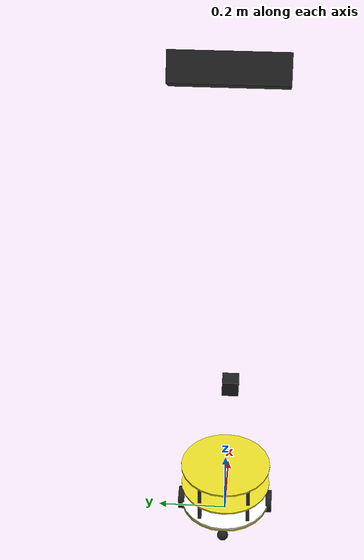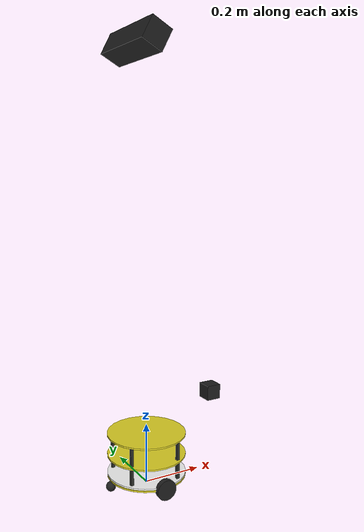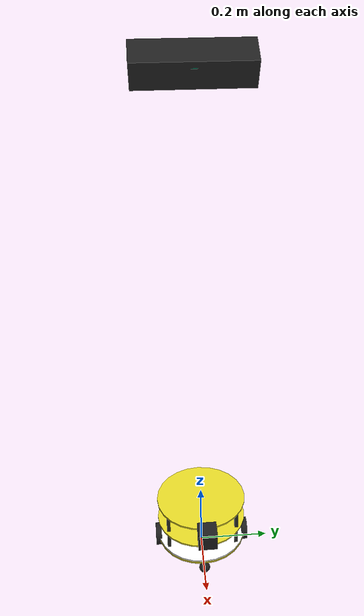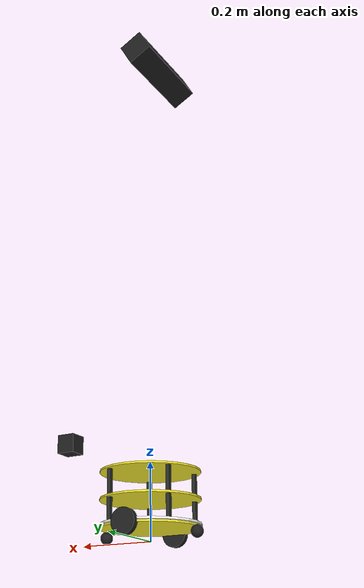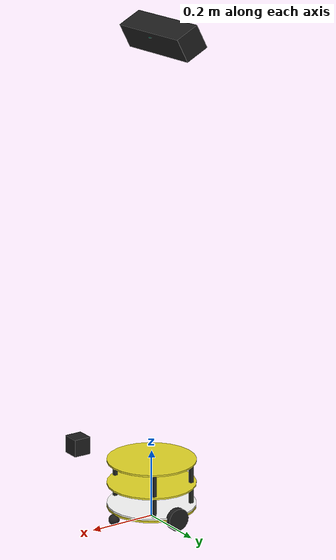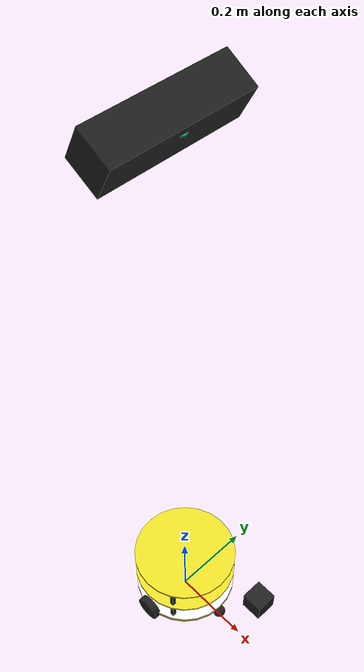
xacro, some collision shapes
<?xml version="1.0"?>
<robot name="mrobot" xmlns:xacro="http://www.ros.org/wiki/xacro">
<!-- robot_mrobot/mrobot_gazebo/urdf/dianzikeji -->

    <xacro:include filename="$(find ASLAM_gazebo_world)/urdf/test_robot.urdf.xacro" />

	<!-- 雷达hokuyo -->
    <xacro:include filename="$(find ASLAM_gazebo_world)/urdf/hokuyo.urdf.xacro" />
	<xacro:property name="laser_offset_x" value="0.25" />
	<xacro:property name="laser_offset_y" value="0" />
	<xacro:property name="laser_offset_z" value="0.1" />
	<xacro:laser_hokuyo parent="plate_2_link" laser_offset_x="${laser_offset_x}" laser_offset_y="${laser_offset_y}" laser_offset_z="${laser_offset_z}" />
	<!-- 相机kinectv1 -->
	<xacro:include filename="$(find ASLAM_gazebo_world)/urdf/kinectv1_neck.urdf.xacro" />
	<xacro:property name="camera_offset_x" value="0.0" />
	<xacro:property name="camera_offset_y" value="0.0" />
	<xacro:property name="camera_offset_z" value="1.4" />
	<xacro:kinectv1_neck parent="base_footprint" camera_offset_x="${camera_offset_x}" camera_offset_y="${camera_offset_y}" camera_offset_z="${camera_offset_z}" />

</robot>

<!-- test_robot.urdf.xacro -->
<robot name="mrobot" xmlns:xacro="http://www.ros.org/wiki/xacro">

	<xacro:include filename="$(find ASLAM_gazebo_world)/urdf/test_robot_body.urdf.xacro" />

	<!-- Body of mrobot, with plates, standoffs -->
	<mrobot_body/>

</robot>

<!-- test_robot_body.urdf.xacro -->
<robot name="mrobot" xmlns:xacro="http://www.ros.org/wiki/xacro">

    <!-- Defining the colors used in this robot -->

    <!-- PROPERTY LIST -->
    <!--All units in m-kg-s-radians unit system -->
    <xacro:property name="M_PI" value="3.1415926535897931" />
    <xacro:property name="shell_high_correct" value="0.04" />
    <xacro:property name="caster_high_correct" value="-0.0001" />
    <!-- Main body length, width, height and mass -->
    <xacro:property name="base_mass"        value="0.5" />
    <xacro:property name="base_link_radius" value="0.13"/>   <!-- origin: 0.13   fabo:0.2-->
    <xacro:property name="base_link_length" value="0.005"/>

    <xacro:property name="motor_x" value="0"/>

    <!-- Caster radius and mass -->
    <xacro:property name="caster_radius"          value="0.016" />
    <xacro:property name="caster_mass"            value="0.01" />
    <xacro:property name="caster_joint_origin_x"  value="-0.13" />    <!-- caster position to center.  fabo:0.2     -->

    <!-- Wheel radius, height and mass -->
    <xacro:property name="wheel_radius" value="0.033" />
    <xacro:property name="wheel_height" value="0.017" />
    <xacro:property name="wheel_mass"   value="0.1" />

    <!-- plate height and mass -->
    <xacro:property name="plate_mass"   value="0.05"/>
    <xacro:property name="plate_height" value="0.07"/>
    <xacro:property name="standoff_x"   value="0.12"/>
    <xacro:property name="standoff_y"   value="0.10"/>

    <!-- Macro for inertia matrix -->
    <xacro:macro name="sphere_inertial_matrix" params="m r">
        <inertial>
            <mass value="${m}" />
            <inertia ixx="${2*m*r*r/5}" ixy="0" ixz="0"
                iyy="${2*m*r*r/5}" iyz="0"
                izz="${2*m*r*r/5}" />
        </inertial>
    </xacro:macro>

    <xacro:macro name="cylinder_inertial_matrix" params="m r h">
        <inertial>
            <mass value="${m}" />
            <inertia ixx="${m*(3*r*r+h*h)/12}" ixy = "0" ixz = "0"
                iyy="${m*(3*r*r+h*h)/12}" iyz = "0"
                izz="${m*r*r/2}" />
        </inertial>
    </xacro:macro>

    <xacro:macro name="box_inertial_matrix" params="m w h d">
        <inertial>
            <mass value="${m}" />
            <inertia ixx="${m*(h*h+d*d)/12}" ixy = "0" ixz = "0"
                iyy="${m*(w*w+d*d)/12}" iyz = "0"
                izz="${m*(w*w+h*h)/12}" />
        </inertial>
    </xacro:macro>

    <!-- Macro for wheel joint -->
    <xacro:macro name="wheel" params="lr translateY">
        <!-- lr: left, right -->
        <link name="wheel_${lr}_link">
            <visual>
                <origin xyz="0 0 0" rpy="${M_PI/2} 0  0 " />
                <geometry>
                    <cylinder length="${wheel_height}" radius="${wheel_radius}" />
                </geometry>
                <material name="Black" />
            </visual>
            <collision>
                <origin xyz="0 0 0" rpy="${M_PI/2} 0 0 " />
                <geometry>
                    <cylinder length="${wheel_height}" radius="${wheel_radius}" />
                </geometry>
            </collision>
            <cylinder_inertial_matrix  m="${wheel_mass}" r="${wheel_radius}" h="${wheel_height}" />
        </link>

        <gazebo reference="wheel_${lr}_link">
            <material>Gazebo/Black</material>
        </gazebo>

        <joint name="base_to_wheel_${lr}_joint" type="continuous">
            <parent link="base_link"/>
            <child link="wheel_${lr}_link"/>
            <origin xyz="${motor_x} ${translateY * base_link_radius} 0" rpy="0 0 0" />
            <axis xyz="0 1 0" rpy="0  0" />

        </joint>

        <!-- Transmission is important to link the joints and the controller -->
        <transmission name="wheel_${lr}_joint_trans">
            <type>transmission_interface/SimpleTransmission</type>
            <joint name="base_to_wheel_${lr}_joint">
	    	<hardwareInterface>EffortJointInterface</hardwareInterface>
    	    </joint>
            <actuator name="wheel_${lr}_joint_motor">
                <hardwareInterface>VelocityJointInterface</hardwareInterface>

                <mechanicalReduction>1</mechanicalReduction>
            </actuator>
        </transmission>
    </xacro:macro>

    <!-- Macro for caster joint -->
    <xacro:macro name="caster" params="fb translateX">
        <!-- fb: front, back -->
        <link name="${fb}_caster_link">
            <visual>
                <origin xyz="0 0 0 " rpy="0 0 0" />
                <geometry>
                    <sphere radius="${caster_radius}" />
                </geometry>
                <material name="Black" />
            </visual>
            <collision>
                <geometry>
                    <sphere radius="${caster_radius}" />
                </geometry>
                <origin xyz="0 0 0 " rpy="0 0 0" />
            </collision>
            <sphere_inertial_matrix  m="${caster_mass}" r="${caster_radius}" />
        </link>

        <gazebo reference="${fb}_caster_link">
            <material>Gazebo/Black</material>
        </gazebo>

        <joint name="base_to_${fb}_caster_joint" type="fixed">
            <parent link="base_link"/>
            <child link="${fb}_caster_link"/>
            <origin xyz="${translateX*caster_joint_origin_x} 0 ${-caster_radius + caster_high_correct}" rpy="0 0 0"/>
        </joint>
    </xacro:macro>

    <!-- Macro for plate joint -->
    <xacro:macro name="plate" params="num parent">
        <link name="plate_${num}_link">
            <cylinder_inertial_matrix  m="0.1" r="${base_link_radius}" h="${base_link_length}" />

            <visual>
                <origin xyz=" 0 0 0 " rpy="0 0 0" />
                <geometry>
                    <cylinder length="${base_link_length}" radius="${base_link_radius}"/>
                </geometry>
                <material name="yellow"/>
            </visual>

            <collision>
                <origin xyz="0.0 0.0 0.0" rpy="0 0 0" />
                <geometry>
                    <cylinder length="${base_link_length}" radius="${base_link_radius}"/>
                </geometry>
            </collision>
        </link>
        <gazebo reference="plate_${num}_link">
            <material>Gazebo/Blue</material>
        </gazebo>
        <joint name="plate_${num}_joint" type="fixed">
            <origin xyz="0 0 ${plate_height}" rpy="0 0 0" />
            <parent link="${parent}"/>
            <child link="plate_${num}_link" />
        </joint>
    </xacro:macro>

    <!-- Macro for standoff joint -->
    <xacro:macro name="mrobot_standoff_2in" params="parent number x_loc y_loc z_loc">
        <joint name="standoff_2in_${number}_joint" type="fixed">
            <origin xyz="${x_loc} ${y_loc} ${z_loc}" rpy="0 0 0" />
            <parent link="${parent}"/>
            <child link="standoff_2in_${number}_link" />
        </joint>

        <link name="standoff_2in_${number}_link">
            <inertial>
                <mass value="0.001" />
                <origin xyz="0 0 0" />
                <inertia ixx="0.0001" ixy="0.0" ixz="0.0"
          iyy="0.0001" iyz="0.0"
          izz="0.0001" />
            </inertial>

            <visual>
                <origin xyz=" 0 0 0 " rpy="0 0 0" />
                <geometry>
                    <box size="0.01 0.01 0.07" />
                </geometry>
                <material name="black">
                    <color rgba="0.16 0.17 0.15 0.9"/>
                </material>
            </visual>

            <collision>
                <origin xyz="0.0 0.0 0.0" rpy="0 0 0" />
                <geometry>
                    <box size="0.01 0.01 0.07" />
                </geometry>
            </collision>
        </link>
    </xacro:macro>

    <!-- BASE-FOOTPRINT -->
    <!-- base_footprint is a fictitious link(frame) that is on the ground right below base_link origin -->
    <xacro:macro name="mrobot_body">
        <link name="base_footprint">
            <visual>
                <origin xyz="0 0 0" rpy="0 0 0" />
                <geometry>
                    <box size="0.001 0.001 0.001" />
                </geometry>
            </visual>
        </link>

        <joint name="base_footprint_joint" type="fixed">
            <origin xyz="0 0 ${wheel_radius}" rpy="0 0 0" />
            <parent link="base_footprint"/>
            <child link="base_link" />
        </joint>

        <!-- BASE-LINK -->
        <!--Actual body/chassis of the robot-->
        <link name="base_link">
            <cylinder_inertial_matrix  m="${base_mass}" r="${base_link_radius}" h="${base_link_length}" />
            <visual>
                <origin xyz=" 0 0 0" rpy="0 0 0" />
                <geometry>
                    <cylinder length="${base_link_length}" radius="${base_link_radius}"/>
                </geometry>
                <material name="yellow" />
            </visual>
            <collision>
                <origin xyz="0 0 0" rpy="0 0 0" />
                <geometry>
                    <cylinder length="${base_link_length}" radius="${base_link_radius}"/>
                </geometry>
            </collision>
        </link>

        <gazebo reference="base_link">
            <material>Gazebo/Blue</material>
        </gazebo>

        <!-- shell -->
        <joint name="shell_footprint_joint" type="fixed">
            <origin xyz="0 0 ${shell_high_correct}" rpy="0 0 ${M_PI}" />
            <parent link="base_footprint"/>
            <child link="shell_link" />
        </joint>

        <link
            name="shell_link">
            <inertial>
            <origin
                xyz="-0.00294082483465983 0.000146714888625652 0.442160868151096"
                rpy="0 0 0" />
            <mass
                value="1e-5" />
            <inertia
                ixx="0.172898160476508"
                ixy="2.31745522812561E-06"
                ixz="-0.00159810687296311"
                iyy="0.148915768801367"
                iyz="-4.49683641611027E-05"
                izz="0.146063097245756" />
            </inertial>
            <visual>
            <origin
                xyz="0 0 0"
                rpy="0 0 0" />
            <geometry>
                <mesh filename="package://ASLAM_gazebo_world/urdf/shell_link.STL" />
            </geometry>
            <material
                name="">
                <color
                rgba="1 1 1 1" />
            </material>
            </visual>
            <collision>
            <origin
                xyz="0 0 0"
                rpy="0 0 0" />
            <geometry>
                <cylinder length="${base_link_length}" radius="${base_link_radius}"/>
            </geometry>
            </collision>
        </link>
        <gazebo reference="shell_link">
            <material>Gazebo/Grey</material>
        </gazebo>

        <!-- Wheel Definitions -->
        <wheel lr="right"  translateY="-1" />
        <wheel lr="left"  translateY="1" />

        <!-- Casters Definitions -->
        <caster fb="front"  translateX="-1" />
        <caster fb="back"  translateX="1" />

        <!-- plates and standoff Definitions -->
        <mrobot_standoff_2in parent="base_link" number="1" x_loc="-${standoff_x/2 + 0.03}" y_loc="-${standoff_y - 0.03}" z_loc="${plate_height/2}"/>
        <mrobot_standoff_2in parent="base_link" number="2" x_loc="-${standoff_x/2 + 0.03}" y_loc="${standoff_y - 0.03}" z_loc="${plate_height/2}"/>
        <mrobot_standoff_2in parent="base_link" number="3" x_loc="${standoff_x/2}" y_loc="-${standoff_y}" z_loc="${plate_height/2}"/>
        <mrobot_standoff_2in parent="base_link" number="4" x_loc="${standoff_x/2}" y_loc="${standoff_y}" z_loc="${plate_height/2}"/>
        <mrobot_standoff_2in parent="standoff_2in_1_link" number="5" x_loc="0" y_loc="0" z_loc="${plate_height}"/>
        <mrobot_standoff_2in parent="standoff_2in_2_link" number="6" x_loc="0" y_loc="0" z_loc="${plate_height}"/>
        <mrobot_standoff_2in parent="standoff_2in_3_link" number="7" x_loc="0" y_loc="0" z_loc="${plate_height}"/>
        <mrobot_standoff_2in parent="standoff_2in_4_link" number="8" x_loc="0" y_loc="0" z_loc="${plate_height}"/>

        <!-- plate Definitions -->
        <plate num="1"  parent="base_link" />
        <plate num="2"  parent="plate_1_link" />

        <!-- controller -->
        <gazebo>
            <plugin name="differential_drive_controller" filename="libgazebo_ros_diff_drive.so">
                <rosDebugLevel>Debug</rosDebugLevel>
                <publishWheelTF>true</publishWheelTF>
                <robotNamespace>/</robotNamespace>
                <publishTf>1</publishTf>
                <publishWheelJointState>true</publishWheelJointState>
                <alwaysOn>true</alwaysOn>
                <updateRate>100.0</updateRate>
                <legacyMode>true</legacyMode>
                <leftJoint>base_to_wheel_left_joint</leftJoint>
                <rightJoint>base_to_wheel_right_joint</rightJoint>
                <wheelSeparation>${base_link_radius*2}</wheelSeparation>
                <wheelDiameter>${2*wheel_radius}</wheelDiameter>
                <broadcastTF>1</broadcastTF>
                <wheelTorque>30</wheelTorque>
                <wheelAcceleration>1.8</wheelAcceleration>
                <commandTopic>cmd_vel</commandTopic>
                <odometryFrame>odom</odometryFrame>
                <odometryTopic>odom</odometryTopic>
                <robotBaseFrame>base_footprint</robotBaseFrame>
		<legacyModeNS>true</legacyModeNS>
            </plugin>
        </gazebo>

    </xacro:macro>
</robot>

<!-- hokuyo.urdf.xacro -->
<robot name="laser_hokuyo" xmlns:xacro="http://ros.org/wiki/xacro">

      <!-- Set up laser gazebo details -->
      <xacro:macro name="sim_hokuyo_range_finder">
            <!-- RPLidar Laser Range Finder -->
            <gazebo reference="laser">
              <sensor type="ray" name="hokuyo_sensor">
                <pose>0 0 0 0 0 0</pose>
                <visualize>false</visualize>
                <update_rate>40</update_rate>
                <ray>
                  <scan>
                    <horizontal>
                      <samples>720</samples><!-- 0.9 degrees -->
                      <min_angle>-1.570796</min_angle>
                      <max_angle>1.570796</max_angle>
                    </horizontal>
                  </scan>
                  <range>
                    <min>0.1</min>
                    <max>20.0</max>   <!--zhangjiadong-->
                    <resolution>0.01</resolution>
                  </range>
                  <noise>
                    <type>gaussian</type>
                    <mean>0.0</mean>
                    <stddev>0.01</stddev>
                  </noise>
                </ray>
                <plugin name="gazebo_ros_hokuyo_controller" filename="libgazebo_ros_laser.so">
                  <topicName>scan</topicName>
                  <frameName>laser</frameName>
                </plugin>
              </sensor>
            </gazebo>
      </xacro:macro>

      <xacro:macro name="laser_hokuyo" params="parent laser_offset_x laser_offset_y laser_offset_z">
        <joint name="laser" type="fixed">
          <origin xyz="${laser_offset_x} ${laser_offset_y} ${laser_offset_z}" rpy="0 0.0 0.0" />
          <parent link="${parent}" />
          <child link="laser" />
        </joint>

        <link name="laser">
          <visual>
            <geometry>
              <box size="0.05 0.05 0.05" />
            </geometry>
            <material name="Black" />
          </visual>
          <inertial>
            <mass value="0.000001" />
            <origin xyz="0 0 0" />
            <inertia ixx="0.0001" ixy="0.0" ixz="0.0"
              iyy="0.0001" iyz="0.0"
              izz="0.0001" />
          </inertial>
        </link>
        <sim_hokuyo_range_finder/>
      </xacro:macro>

</robot>

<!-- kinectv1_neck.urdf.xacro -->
<robot name="kinectv1_neck" xmlns:xacro="http://ros.org/wiki/xacro">

  <xacro:property name="cam_px" value="-0.087" />
	<xacro:property name="cam_pz" value="0.2870" />
	<xacro:property name="cam_or" value="0" />
	<xacro:property name="cam_op" value="0" />
	<xacro:property name="cam_oy" value="0" />
  <xacro:property name="kinect_cam_py" value="0.0"/>

  <!-- Parameterised in part by the values in turtlebot_properties.urdf.xacro -->
  <xacro:macro name="sim_3dcamera">
    <gazebo reference="camera_link">
      <sensor type="depth" name="camera">
        <always_on>true</always_on>
        <update_rate>20.0</update_rate>
        <camera>
          <horizontal_fov>${60.0*M_PI/180.0}</horizontal_fov>
          <image>
            <format>B8G8R8</format>
            <width>640</width>
            <height>480</height>
          </image>
          <clip>
            <near>0.05</near>
            <far>8.0</far>
          </clip>
        </camera>
        <plugin name="kinect_camera_controller" filename="libgazebo_ros_openni_kinect.so">
          <cameraName>camera</cameraName>
          <alwaysOn>true</alwaysOn>
          <updateRate>10</updateRate>
          <imageTopicName>rgb/image_raw</imageTopicName>
          <depthImageTopicName>depth/image_raw</depthImageTopicName>
          <pointCloudTopicName>depth/points</pointCloudTopicName>
          <cameraInfoTopicName>rgb/camera_info</cameraInfoTopicName>
          <depthImageCameraInfoTopicName>depth/camera_info</depthImageCameraInfoTopicName>
          <frameName>camera_depth_optical_frame</frameName>
          <baseline>0.1</baseline>
          <distortion_k1>0.0</distortion_k1>
          <distortion_k2>0.0</distortion_k2>
          <distortion_k3>0.0</distortion_k3>
          <distortion_t1>0.0</distortion_t1>
          <distortion_t2>0.0</distortion_t2>
          <pointCloudCutoff>0.4</pointCloudCutoff>
        </plugin>
      </sensor>
    </gazebo>
  </xacro:macro>

  <!-- kinect 。我第一篇论文中的仿真中，用的这个，即macro sensor_kinect -->
  <xacro:include filename="$(find ASLAM_gazebo_world)/urdf/kinect.urdf.xacro"/>
  <!-- kinectv1 huxianxu版本。我第一篇论文中的仿真中，没有用到-->
  <xacro:macro name="kinectv1" params="parent">
      <joint name="camera_rgb_joint" type="fixed">
          <origin xyz="0 ${kinect_cam_py} 0.0" rpy="0 0 0"/>
        <parent link="${parent}"/>
        <child link="camera_rgb_frame" />
      </joint>
      <link name="camera_rgb_frame"/>

      <joint name="camera_rgb_optical_joint" type="fixed">
        <origin xyz="0 0 0" rpy="${-M_PI/2} 0 ${-M_PI/2}" />
        <parent link="camera_rgb_frame" />
        <child link="camera_rgb_optical_frame" />
      </joint>
      <link name="camera_rgb_optical_frame"/>

      <joint name="camera_joint" type="fixed">
        <origin xyz="-0.031 ${-kinect_cam_py} -0.016" rpy="0 0 0"/>
        <parent link="camera_rgb_frame"/>
        <child link="camera_link"/>
      </joint>
        <link name="camera_link">
        <visual>
          <origin xyz="0 0 0" rpy="0 0 ${M_PI/2}"/>
          <geometry>
            <mesh filename="package://ASLAM_gazebo_world/urdf/kinect.dae"/>
          </geometry>
        </visual>
        <collision>
          <origin xyz="0.0 0.0 0.0" rpy="0 0 0"/>
          <geometry>
            <box size="0.07271 0.27794 0.073"/>
          </geometry>
        </collision>
        <inertial>
          <mass value="1e-5" />
          <origin xyz="0 0 0" />
          <inertia ixx="0.003881243" ixy="0.0" ixz="0.0"
                    iyy="0.000498940" iyz="0.0"
                    izz="0.003879257" />
        </inertial>
      </link>

      <joint name="camera_depth_joint" type="fixed">
        <origin xyz="0 ${2 * -kinect_cam_py} 0" rpy="0 0 0" />
        <parent link="camera_rgb_frame" />
        <child link="camera_depth_frame" />
      </joint>
      <link name="camera_depth_frame"/>

      <joint name="camera_depth_optical_joint" type="fixed">
        <origin xyz="0 0 0" rpy="${-M_PI/2} 0 ${-M_PI/2}" />
        <parent link="camera_depth_frame" />
        <child link="camera_depth_optical_frame" />
      </joint>
      <link name="camera_depth_optical_frame"/>

      <!-- Kinect sensor for simulation -->
      <xacro:sim_3dcamera/>
  </xacro:macro>

  <!-- 添加脖子 -->
  <xacro:macro name="kinectv1_neck" params="parent camera_offset_x camera_offset_y camera_offset_z">
        <joint name="joint_neck_1" type="continuous">
          <origin xyz="${camera_offset_x} ${camera_offset_y} ${camera_offset_z}" rpy="0 0 0"/>
          <parent link="${parent}"/>
          <child link="platform_1"/>
          <axis xyz="0 0 1"/>
          <limit effort="300" velocity="1" lower="-3.14" upper="3.14"/>
          <!-- 1.57  M_PI-->
          <dynamics damping="0.1" friction="0.5"/>
        </joint>

        <link name="platform_1">
          <collision>
            <origin xyz="0 0 0" rpy="0 0 0"/>
            <geometry>
              <cylinder length="0.001" radius="0.01"/>
            </geometry>
          </collision>
          <visual>
            <origin xyz="0 0 0" rpy="0 0 0"/>
            <geometry>
              <cylinder length="0.001" radius="0.01"/>
            </geometry>
          </visual>
          <inertial>
            <mass value="1e-5" />
            <origin xyz="0 0 0" rpy="0 0 0"/>
            <inertia ixx="1e-6" ixy="0" ixz="0" iyy="1e-6" iyz="0" izz="1e-6" />
          </inertial>
        </link>

        <joint name="joint_neck_2" type="fixed">
          <origin xyz="0.0 0.0 0.0" rpy="0 0.4887 0"/>   <!-- 28 angle 0.4887hudu -->
          <parent link="platform_1"/>
          <child link="platform_2"/>
        </joint>

        <link name="platform_2">
          <collision>
            <origin xyz="0 0 0" rpy="0 0 0"/>
            <geometry>

              <cylinder length="0.001" radius="0.002"/>
            </geometry>
          </collision>
          <visual>
            <origin xyz="0 0 0" rpy="0 0 0"/>
            <geometry>
              <cylinder length="0.001" radius="0.002"/>
            </geometry>
          </visual>
          <inertial>
            <mass value="1e-5" />
            <origin xyz="0 0 0" rpy="0 0 0"/>
            <inertia ixx="1e-6" ixy="0" ixz="0" iyy="1e-6" iyz="0" izz="1e-6" />
          </inertial>
        </link>

        <!-- rplidar sensor for simulation -->
        <xacro:sensor_kinect parent="platform_2"/>

        <transmission name="transmission_neck">
          <type>transmission_interface/SimpleTransmission</type>
          <joint name="joint_neck_1">
            <hardwareInterface>hardware_interface/PositionJointInterface</hardwareInterface>
          </joint>
          <actuator name="motor_neck">
            <hardwareInterface>hardware_interface/PositionJointInterface</hardwareInterface>
            <mechanicalReduction>1</mechanicalReduction>
          </actuator>
        </transmission>

        <gazebo>
          <plugin name="gazebo_ros_control" filename="libgazebo_ros_control.so">
              <robotNamespace>/neck</robotNamespace>
          </plugin>
        </gazebo>

  </xacro:macro>

</robot>

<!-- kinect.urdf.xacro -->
<robot name="sensor_kinect" xmlns:xacro="http://ros.org/wiki/xacro">

  <!-- [1]  Microsoft Kinect / ASUS Xtion PRO Live for simulation -->
  <xacro:macro name="sim_3dsensor">
    <gazebo reference="camera_link">
      <sensor type="depth" name="camera">
        <always_on>true</always_on>
        <update_rate>30.0</update_rate>
        <camera>
          <horizontal_fov>${60.0*M_PI/180.0}</horizontal_fov>
          <image>
            <format>B8G8R8</format>
            <width>640</width>
            <height>480</height>
          </image>
          <clip>
            <near>0.05</near>
            <far>8.0</far>
          </clip>
        </camera>
        <plugin name="kinect_camera_controller" filename="libgazebo_ros_openni_kinect.so">
          <cameraName>/</cameraName>
          <alwaysOn>true</alwaysOn>
          <updateRate>30</updateRate>
          <imageTopicName>rgb/image_raw</imageTopicName>
          <depthImageTopicName>/depth_to_rgb/image_raw</depthImageTopicName>
          <pointCloudTopicName>depth/points</pointCloudTopicName>
          <cameraInfoTopicName>rgb/camera_info</cameraInfoTopicName>
          <depthImageCameraInfoTopicName>depth/camera_info</depthImageCameraInfoTopicName>
          <frameName>camera_depth_optical_frame</frameName>
          <baseline>0.1</baseline>
          <distortion_k1>0.0</distortion_k1>
          <distortion_k2>0.0</distortion_k2>
          <distortion_k3>0.0</distortion_k3>
          <distortion_t1>0.0</distortion_t1>
          <distortion_t2>0.0</distortion_t2>
          <pointCloudCutoff>0.4</pointCloudCutoff>
        </plugin>
      </sensor>
       <material>Gazebo/Black</material>
    </gazebo>
  </xacro:macro>

  <!-- [2]  pose from camera to robot -->
  <xacro:property name="cam_px" value="0" />
	<xacro:property name="cam_pz" value="0.0" />
	<xacro:property name="cam_or" value="0" />
	<xacro:property name="cam_op" value="0" />
	<xacro:property name="cam_oy" value="0" />
  <xacro:property name="kinect_cam_py" value="-0.0125"/>

  <!-- [3]  Parameterised in part by the values in turtlebot_properties.urdf.xacro -->
  <xacro:macro name="sensor_kinect" params="parent">
    <joint name="camera_rgb_joint" type="fixed">
      <origin xyz="${cam_px} ${kinect_cam_py} ${cam_pz}" rpy="${cam_or} ${cam_op} ${cam_oy}"/>
      <parent link="${parent}"/>
      <child link="camera_rgb_frame" />
    </joint>
    <link name="camera_rgb_frame"/>

    <joint name="camera_rgb_optical_joint" type="fixed">
      <origin xyz="0 0 0" rpy="${-M_PI/2} 0 ${-M_PI/2}" />
      <parent link="camera_rgb_frame" />
      <child link="camera_rgb_optical_frame" />
    </joint>
    <link name="camera_rgb_optical_frame"/>

    <joint name="camera_joint" type="fixed">
      <origin xyz="-0.031 ${-kinect_cam_py} -0.016" rpy="0 0 0"/>
      <parent link="camera_rgb_frame"/>
      <child link="camera_link"/>
    </joint>
      <link name="camera_link">
      <visual>
       <origin xyz="0 0 0" rpy="0 0 ${M_PI/2}"/>
        <geometry>
            <mesh filename="package://ASLAM_gazebo_world/urdf/kinect.dae"/>
        </geometry>
      </visual>
  	  <collision>
        <origin xyz="0.0 0.0 0.0" rpy="0 0 0"/>
  	    <geometry>
  	      <box size="0.07271 0.27794 0.073"/>
  	    </geometry>
  	  </collision>
      <inertial>
        <mass value="1e-5" />
        <origin xyz="0 0 0" />
        <inertia ixx="0.003881243" ixy="0.0" ixz="0.0"
                 iyy="0.000498940" iyz="0.0"
                 izz="0.003879257" />
      </inertial>
    </link>

	<joint name="camera_depth_joint" type="fixed">
	  <origin xyz="0 ${2 * -kinect_cam_py} 0" rpy="0 0 0" />
	  <parent link="camera_rgb_frame" />
	  <child link="camera_depth_frame" />
	</joint>
	<link name="camera_depth_frame"/>

	<joint name="camera_depth_optical_joint" type="fixed">
	  <origin xyz="0 0 0" rpy="${-M_PI/2} 0 ${-M_PI/2}" />
	  <parent link="camera_depth_frame" />
	  <child link="camera_depth_optical_frame" />
	</joint>
	<link name="camera_depth_optical_frame"/>

	<!-- Kinect sensor for simulation -->
	<xacro:sim_3dsensor/>
  </xacro:macro>
</robot>
